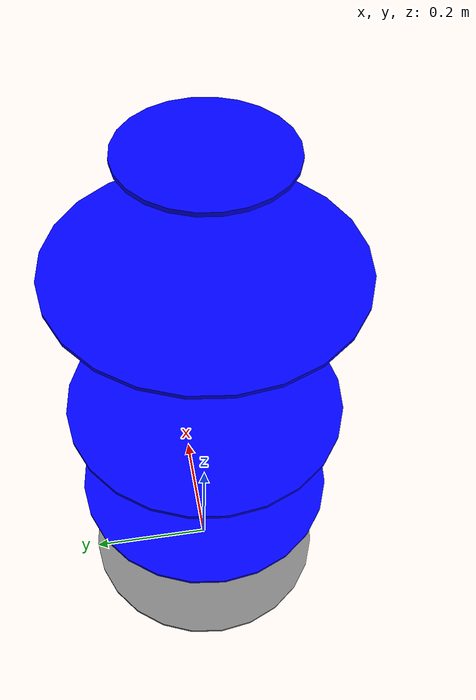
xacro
<?xml version="1.0"?>
<robot name="mybot" xmlns:xacro="http://www.ros.org/wiki/xacro">

  <!-- Properties -->
  <xacro:property name="layer_radius" value="0.20"/>
  <xacro:property name="layer_thickness" value="0.005"/>
  <xacro:property name="wheel_radius" value="0.0325"/>
  <xacro:property name="wheel_width" value="0.026"/>
  <xacro:property name="wheel_distance" value="0.305"/>
  <xacro:property name="lidar_height" value="0.83"/>
  <xacro:property name="imu_height" value="0.001"/>
  <xacro:property name="caster_radius" value="0.0325"/>
  <xacro:property name="caster_distance" value="0.1525025"/>
  <xacro:property name="pillar_radius" value="0.005"/>
  <xacro:property name="pillar_height" value="0.65"/>

  <!-- Base footprint -->
  <link name="base_footprint"/>
  <joint name="base_footprint_joint" type="fixed">
    <parent link="base_footprint"/>
    <child link="base_link"/>
    <origin xyz="0 0 0.005" rpy="0 0 0"/>
  </joint>

<!-- Base Link (Layer 1) -->
  <link name="base_link">
    <visual>
      <geometry>
        <cylinder length="${layer_thickness}" radius="${layer_radius}"/>
      </geometry>
      <origin xyz="0 0 -0.0025" rpy="0 0 0"/>
      <material name="grey"><color rgba="0.5 0.5 0.5 1"/></material>
    </visual>
    <collision>
      <geometry>
        <cylinder length="${layer_thickness}" radius="${layer_radius}"/>
      </geometry>
    </collision>
	<xacro:inertial_cylinder mass="2.0" length="${layer_thickness}" radius="${layer_radius}">
		<origin xyz="0 0 -0.0025" rpy="0 0 0"/>
	</xacro:inertial_cylinder>
  </link>

    <!-- Macro for Other Layers -->
  <xacro:macro name="layer" params="index height radius">
    <link name="layer_${index}">
      <visual>
        <geometry>
          <cylinder length="${layer_thickness}" radius="${radius}"/>
        </geometry>
        <origin xyz="0 0 0" rpy="0 0 0"/>
        <material name="blue"><color rgba="0 0 1 1"/></material>
      </visual>
    </link>

      <!-- Gazebo-specific visual appearance -->
  <gazebo reference="layer_${index}">
    <material>Gazebo/Blue</material>
  </gazebo>

    <joint name="layer_${index}_joint" type="fixed">
      <parent link="base_link"/>
      <child link="layer_${index}"/>
      <origin xyz="0 0 ${height}" rpy="0 0 0"/>
    </joint>
  </xacro:macro>

  <!-- Add Layers 2 to 5 -->
  <xacro:layer index="2" height="0.20" radius="${layer_radius}"/>
  <xacro:layer index="3" height="0.40" radius="${layer_radius}"/>
  <xacro:layer index="4" height="0.65" radius="${layer_radius}"/>
  <xacro:layer index="5" height="0.80" radius="0.10"/>

</robot>
